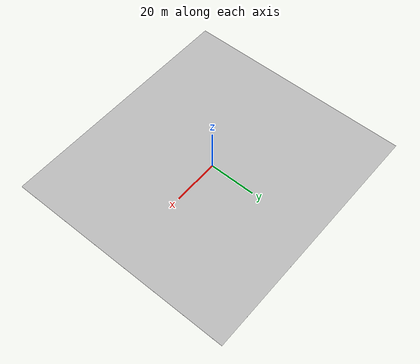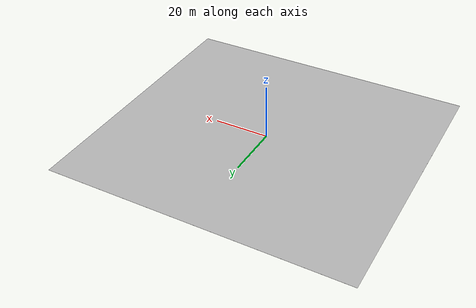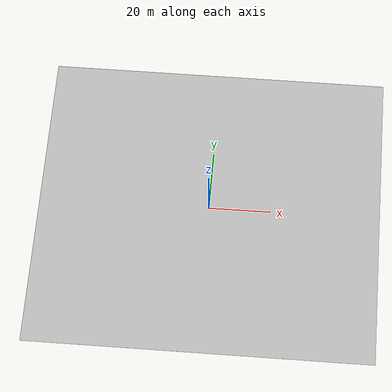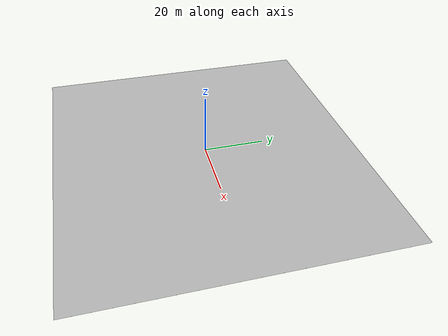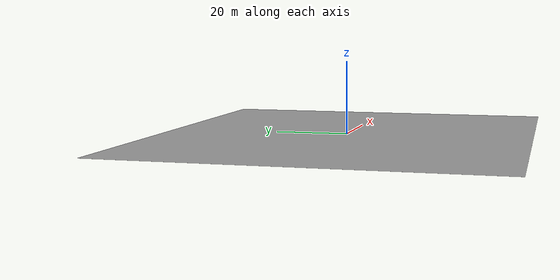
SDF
<?xml version='1.0'?>
<sdf version='1.6'>
  <model name='Blueground3.0'>
    <link name='link_0'>
      <inertial>
        <mass>51.0815</mass>
        <inertia>
          <ixx>42786.6</ixx>
          <ixy>0</ixy>
          <ixz>0</ixz>
          <iyy>51073.4</iyy>
          <iyz>0</iyz>
          <izz>93859.9</izz>
        </inertia>
        <pose frame=''>0 0 0 0 -0 0</pose>
      </inertial>
      <pose frame=''>0 0 -0 0 -0 0</pose>
      <visual name='visual'>
        <pose frame=''>0 0 0 0 -0 0</pose>
        <geometry>
          <box>
            <size>109.536 100.257 0.004654</size>
          </box>
        </geometry>
        <material>
          <lighting>1</lighting>
            <script>
              <uri>model://BlueGround/materials/scripts</uri>
              <uri>model://BlueGround/materials/textures</uri>
              <name>vrc/ocean</name>
            </script>
        </material>
        <transparency>0</transparency>
        <cast_shadows>1</cast_shadows>
      </visual>
      <collision name='collision'>
        <laser_retro>0</laser_retro>
        <max_contacts>10</max_contacts>
        <pose frame=''>0 0 0 0 -0 0</pose>
        <geometry>
          <box>
            <size>109.536 100.257 0.004654</size>
          </box>
        </geometry>
        <surface>
          <friction>
            <ode>
              <mu>1</mu>
              <mu2>1</mu2>
              <fdir1>0 0 0</fdir1>
              <slip1>0</slip1>
              <slip2>0</slip2>
            </ode>
            <torsional>
              <coefficient>1</coefficient>
              <patch_radius>0</patch_radius>
              <surface_radius>0</surface_radius>
              <use_patch_radius>1</use_patch_radius>
              <ode>
                <slip>0</slip>
              </ode>
            </torsional>
          </friction>
          <bounce>
            <restitution_coefficient>0</restitution_coefficient>
            <threshold>1e+06</threshold>
          </bounce>
          <contact>
            <collide_without_contact>0</collide_without_contact>
            <collide_without_contact_bitmask>1</collide_without_contact_bitmask>
            <collide_bitmask>1</collide_bitmask>
            <ode>
              <soft_cfm>0</soft_cfm>
              <soft_erp>0.2</soft_erp>
              <kp>1e+13</kp>
              <kd>1</kd>
              <max_vel>0.01</max_vel>
              <min_depth>0</min_depth>
            </ode>
            <bullet>
              <split_impulse>1</split_impulse>
              <split_impulse_penetration_threshold>-0.01</split_impulse_penetration_threshold>
              <soft_cfm>0</soft_cfm>
              <soft_erp>0.2</soft_erp>
              <kp>1e+13</kp>
              <kd>1</kd>
            </bullet>
          </contact>
        </surface>
      </collision>
    </link>
    <static>0</static>
    <allow_auto_disable>1</allow_auto_disable>
  </model>
</sdf>
